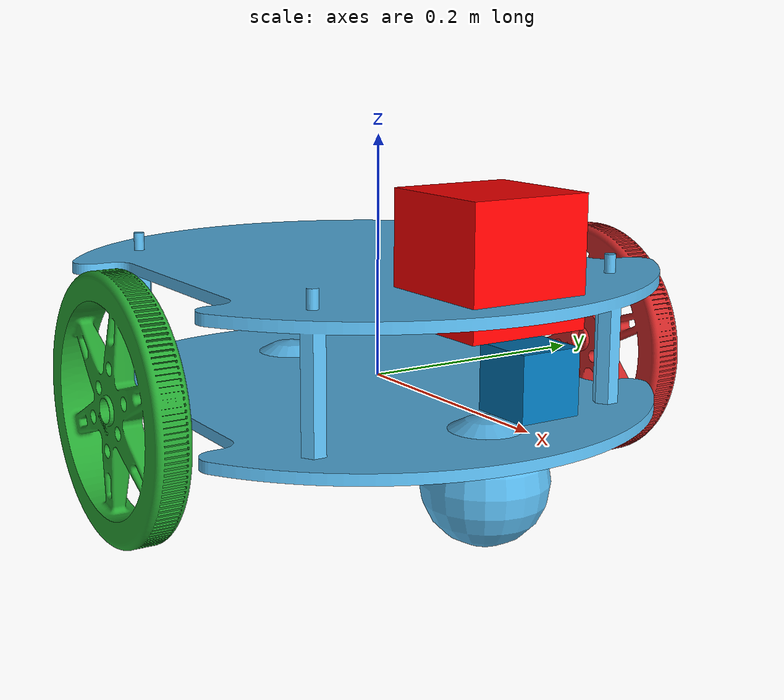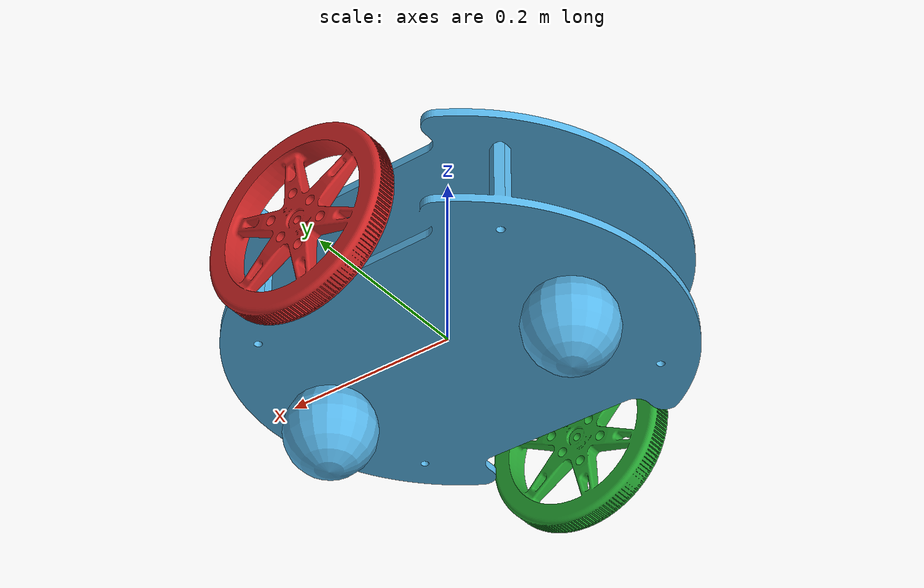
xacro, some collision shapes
<?xml version='1.0'?>

<robot name="my_robot" xmlns:xacro="http://www.ros.org/wiki/xacro">

<xacro:include filename="$(find my_robot)/urdf/my_robot.gazebo" />

  <link name="robot_footprint"></link>

  <joint name="robot_footprint_joint" type="fixed">
    <origin xyz="0 0 0" rpy="0 0 0" />
    <parent link="robot_footprint"/>
    <child link="chassis" />
  </joint>

  <link name='chassis'>
    <pose>0 0 0 0 0 0</pose>

    <inertial>
      <mass value="15.0"/>
      <origin xyz="0 0 0" rpy=" 0 0 0"/>
    <inertia
      ixx="0.1" ixy="0" ixz="0"
      iyy="0.1" iyz="0"
      izz="0.1"
     />
    </inertial>

    <collision name='collision'>
      <origin xyz="0 0 -0.02" rpy=" 0 0 0"/>
      <geometry>
        <box size=".5 .3 .1"/>
      </geometry>
    </collision>

    <visual name='chassis_visual'>
      <origin xyz="0 0 -0.02" rpy=" 0 0 1.5707"/>
      <geometry>
        <mesh filename="package://my_robot/meshes/rosUGV_NoWheels.dae" scale="0.06 0.06 0.06"/>
      </geometry>
    </visual>

    <collision name='back_caster_collision'>
      <origin xyz="-0.15 0 -0.05" rpy=" 0 0 0"/>
      <geometry>
        <sphere radius="0.0499"/>
      </geometry>
    </collision>

    <visual name='back_caster_visual'>
      <origin xyz="-0.15 0 -0.05" rpy=" 0 0 0"/>
      <geometry>
        <sphere radius="0.05"/>
      </geometry>
    </visual>

    <collision name='front_caster_collision'>
      <origin xyz="0.15 0 -0.05" rpy=" 0 0 0"/>
      <geometry>
        <sphere radius="0.0499"/>
      </geometry>
    </collision>

    <visual name='front_caster_visual'>
      <origin xyz="0.15 0 -0.05" rpy=" 0 0 0"/>
      <geometry>
        <sphere radius="0.05"/>
      </geometry>
    </visual>

  </link>

  <link name='left_wheel'>
    <pose>0 0 0 0 0 0</pose>

    <inertial>
      <mass value="5.0"/>
      <origin xyz="0.0 0 0" rpy=" 0 0 1.5707"/>
      <inertia
          ixx="0.1" ixy="0" ixz="0"
          iyy="0.1" iyz="0"
          izz="0.1"
      />
    </inertial>

    <collision name='collision'>
      <origin xyz="0 0.07 0" rpy=" 0 1.5707 1.5707"/>
      <geometry>
        <cylinder radius="0.1" length="0.02"/>
      </geometry>
    </collision>

    <visual name='left_wheel_visual'>
      <origin xyz="0 0.07 -0.09" rpy=" 0 0 1.5707"/>
      <geometry>
        <mesh filename="package://my_robot/meshes/ROSUGV_Wheel.dae" scale="0.07 0.07 0.07"/>
      </geometry>
    </visual>
  </link>

  <link name='right_wheel'>
    <pose>0 0 0 0 0 0</pose>

    <inertial>
      <mass value="5.0"/>
      <origin xyz="0.0 0 0" rpy=" 0 0 1.5707"/>
      <inertia
          ixx="0.1" ixy="0" ixz="0"
          iyy="0.1" iyz="0"
          izz="0.1"
      />
    </inertial>

    <collision name='collision'>
      <origin xyz="0 -0.09 0" rpy=" 0 1.5707 1.5707"/>
      <geometry>
        <cylinder radius="0.1" length="0.02"/>
      </geometry>
    </collision>

    <visual name='right_wheel_visual'>
      <origin xyz="0 -0.09 -0.09" rpy=" 0 0 1.5707"/>
      <geometry>
        <mesh filename="package://my_robot/meshes/ROSUGV_Wheel.dae" scale="0.07 0.07 0.07"/>
      </geometry>
    </visual>
  </link>

  <joint type="continuous" name="left_wheel_hinge">
    <origin xyz="0 0.15 0" rpy="0 0 0"/>
    <child link="left_wheel"/>
    <parent link="chassis"/>
    <axis xyz="0 1 0" rpy="0 0 0"/>
    <limit effort="10000" velocity="1000"/>
    <dynamics damping="1.0" friction="1.0"/>
  </joint>

  <joint type="continuous" name="right_wheel_hinge">
    <origin xyz="0 -0.15 0" rpy="0 0 0"/>
    <child link="right_wheel"/>
    <parent link="chassis"/>
    <axis xyz="0 1 0" rpy="0 0 0"/>
    <limit effort="10000" velocity="1000"/>
    <dynamics damping="1.0" friction="1.0"/>
  </joint>

  <link name='camera'>
    <pose>0 0 0 0 0 0</pose>
    <inertial>
      <mass value="0.1"/>
      <origin xyz="0.0 0 0" rpy=" 0 0 0"/>
      <inertia
          ixx="1e-6" ixy="0" ixz="0"
          iyy="1e-6" iyz="0"
          izz="1e-6"
      />
    </inertial>

    <collision name='collision'>
      <origin xyz="0.1 0 0.02" rpy=" 0 0 0"/>
      <geometry>
        <box size="0.05 0.05 0.05"/>
      </geometry>
    </collision>

    <visual name='camera_visual'>
      <origin xyz="0.10 0 0.02" rpy=" 0 0 0"/>
      <geometry>
        <box size="0.05 0.05 0.05"/>
      </geometry>
    </visual>
  </link>

  <joint type="fixed" name="camera_joint">
    <origin xyz="0.10 0 0.02" rpy="0 0 0"/>
    <axis xyz= "0 1 0"/>
    <parent link="chassis"/>
    <child link="camera"/>
  </joint>

  <link name='hokuyo'>
    <pose>0 0 0 0 0 0</pose>
    <inertial>
      <mass value="1e-5"/>
      <origin xyz="0.0 0 0" rpy=" 0 0 0"/>
      <inertia
          ixx="1e-6" ixy="0" ixz="0"
          iyy="1e-6" iyz="0"
          izz="1e-6"
      />
    </inertial>

    <collision name='collision'>
      <origin xyz="0.0 0 0" rpy=" 0 0 0"/>
      <geometry>
        <box size="0.1 0.1 0.1"/>
      </geometry>
    </collision>

    <visual name='hokuyo_visual'>
      <origin xyz="0.0 0 0" rpy=" 0 0 0"/>
      <geometry>
        <mesh filename="package://my_robot/meshes/hokuyo.dae"/>
      </geometry>
      <material name="Red">
        <color rgba="1.0 0 0 0"/>
      </material>
    </visual>
  </link>

  <joint type="fixed" name="hokuyo_joint">
    <origin xyz="0.15 0 0.12" rpy="0 0 0"/>
    <axis xyz= "0 1 0"/>
    <parent link="chassis"/>
    <child link="hokuyo"/>
  </joint>

  <gazebo reference="left_wheel">
    <material>Gazebo/Red</material>
  </gazebo>

  <gazebo reference="right_wheel">
    <material>Gazebo/Green</material>
  </gazebo>

  <joint name="camera_optical_joint" type="fixed">
    <origin xyz="0 0 0" rpy="-1.5707 0 -1.5707"/>
    <parent link="camera"/>
    <child link="camera_link_optical"/>
  </joint>

  <link name="camera_link_optical">
  </link>
</robot>
